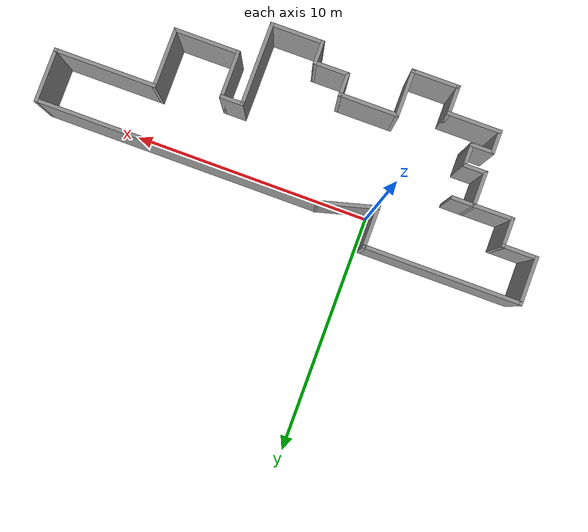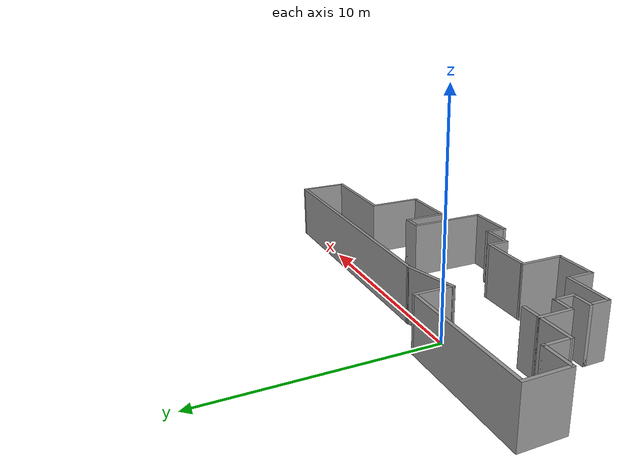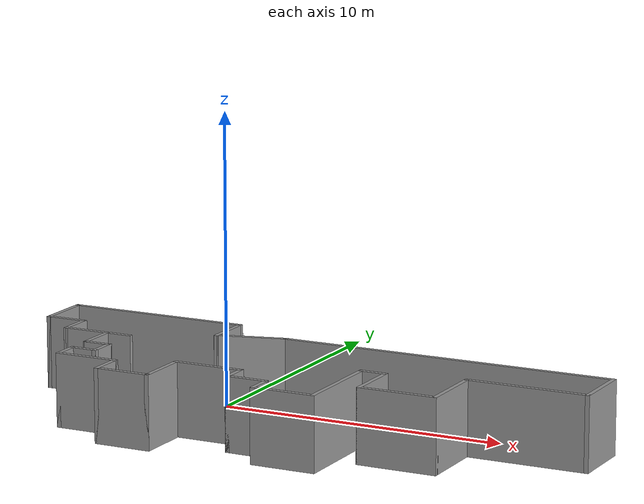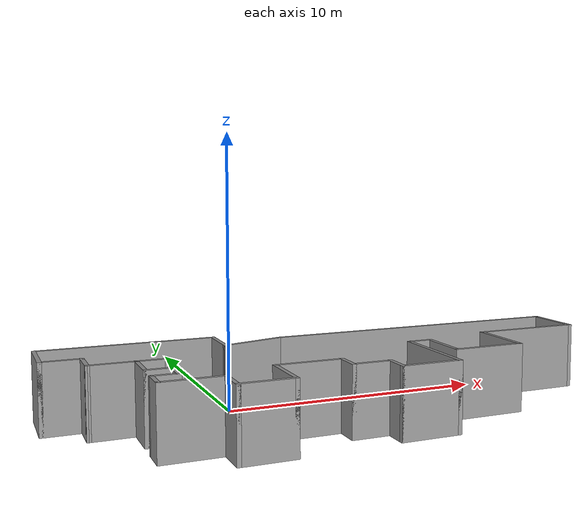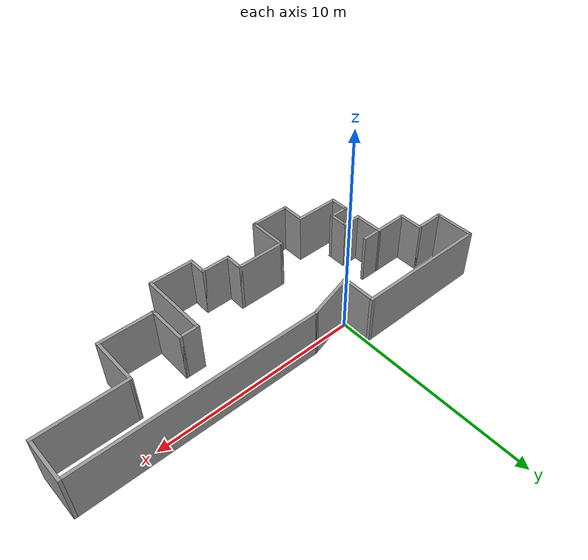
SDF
<?xml version='1.0'?>
<sdf version='1.7'>
  <model name='new_world'>
    <pose>3.56004 -2.22411 0 0 -0 0</pose>
    <link name='Wall_0'>
      <collision name='Wall_0_Collision'>
        <geometry>
          <box>
            <size>1.5 0.15 2.5</size>
          </box>
        </geometry>
        <pose>0 0 1.25 0 -0 0</pose>
      </collision>
      <visual name='Wall_0_Visual'>
        <pose>0 0 1.25 0 -0 0</pose>
        <geometry>
          <box>
            <size>1.5 0.15 2.5</size>
          </box>
        </geometry>
        <material>
          <script>
            <uri>file://media/materials/scripts/gazebo.material</uri>
            <name>Gazebo/Grey</name>
          </script>
          <ambient>1 1 1 1</ambient>
        </material>
        <meta>
          <layer>0</layer>
        </meta>
      </visual>
      <pose>-7.19004 -0.070888 0 0 -0 -1.5708</pose>
    </link>
    <link name='Wall_1'>
      <collision name='Wall_1_Collision'>
        <geometry>
          <box>
            <size>1 0.15 2.5</size>
          </box>
        </geometry>
        <pose>0 0 1.25 0 -0 0</pose>
      </collision>
      <visual name='Wall_1_Visual'>
        <pose>0 0 1.25 0 -0 0</pose>
        <geometry>
          <box>
            <size>1 0.15 2.5</size>
          </box>
        </geometry>
        <material>
          <script>
            <uri>file://media/materials/scripts/gazebo.material</uri>
            <name>Gazebo/Grey</name>
          </script>
          <ambient>1 1 1 1</ambient>
        </material>
        <meta>
          <layer>0</layer>
        </meta>
      </visual>
      <pose>-6.76504 -0.745888 0 0 -0 0</pose>
    </link>
    <link name='Wall_10'>
      <collision name='Wall_10_Collision'>
        <geometry>
          <box>
            <size>1 0.15 2.5</size>
          </box>
        </geometry>
        <pose>0 0 1.25 0 -0 0</pose>
      </collision>
      <visual name='Wall_10_Visual'>
        <pose>0 0 1.25 0 -0 0</pose>
        <geometry>
          <box>
            <size>1 0.15 2.5</size>
          </box>
        </geometry>
        <material>
          <script>
            <uri>file://media/materials/scripts/gazebo.material</uri>
            <name>Gazebo/Grey</name>
          </script>
          <ambient>1 1 1 1</ambient>
        </material>
        <meta>
          <layer>0</layer>
        </meta>
      </visual>
      <pose>-0.890037 -2.12089 0 0 -0 -1.5708</pose>
    </link>
    <link name='Wall_11'>
      <collision name='Wall_11_Collision'>
        <geometry>
          <box>
            <size>1.5 0.15 2.5</size>
          </box>
        </geometry>
        <pose>0 0 1.25 0 -0 0</pose>
      </collision>
      <visual name='Wall_11_Visual'>
        <pose>0 0 1.25 0 -0 0</pose>
        <geometry>
          <box>
            <size>1.5 0.15 2.5</size>
          </box>
        </geometry>
        <material>
          <script>
            <uri>file://media/materials/scripts/gazebo.material</uri>
            <name>Gazebo/Grey</name>
          </script>
          <ambient>1 1 1 1</ambient>
        </material>
        <meta>
          <layer>0</layer>
        </meta>
      </visual>
      <pose>-0.215037 -2.54589 0 0 -0 0</pose>
    </link>
    <link name='Wall_12'>
      <collision name='Wall_12_Collision'>
        <geometry>
          <box>
            <size>1 0.15 2.5</size>
          </box>
        </geometry>
        <pose>0 0 1.25 0 -0 0</pose>
      </collision>
      <visual name='Wall_12_Visual'>
        <pose>0 0 1.25 0 -0 0</pose>
        <geometry>
          <box>
            <size>1 0.15 2.5</size>
          </box>
        </geometry>
        <material>
          <script>
            <uri>file://media/materials/scripts/gazebo.material</uri>
            <name>Gazebo/Grey</name>
          </script>
          <ambient>1 1 1 1</ambient>
        </material>
        <meta>
          <layer>0</layer>
        </meta>
      </visual>
      <pose>0.459963 -2.97089 0 0 -0 -1.5708</pose>
    </link>
    <link name='Wall_13'>
      <collision name='Wall_13_Collision'>
        <geometry>
          <box>
            <size>2.25 0.15 2.5</size>
          </box>
        </geometry>
        <pose>0 0 1.25 0 -0 0</pose>
      </collision>
      <visual name='Wall_13_Visual'>
        <pose>0 0 1.25 0 -0 0</pose>
        <geometry>
          <box>
            <size>2.25 0.15 2.5</size>
          </box>
        </geometry>
        <material>
          <script>
            <uri>file://media/materials/scripts/gazebo.material</uri>
            <name>Gazebo/Grey</name>
          </script>
          <ambient>1 1 1 1</ambient>
        </material>
        <meta>
          <layer>0</layer>
        </meta>
      </visual>
      <pose>1.50996 -3.39589 0 0 -0 0</pose>
    </link>
    <link name='Wall_14'>
      <collision name='Wall_14_Collision'>
        <geometry>
          <box>
            <size>3.5 0.15 2.5</size>
          </box>
        </geometry>
        <pose>0 0 1.25 0 -0 0</pose>
      </collision>
      <visual name='Wall_14_Visual'>
        <pose>0 0 1.25 0 -0 0</pose>
        <geometry>
          <box>
            <size>3.5 0.15 2.5</size>
          </box>
        </geometry>
        <material>
          <script>
            <uri>file://media/materials/scripts/gazebo.material</uri>
            <name>Gazebo/Grey</name>
          </script>
          <ambient>1 1 1 1</ambient>
        </material>
        <meta>
          <layer>0</layer>
        </meta>
      </visual>
      <pose>2.55996 -1.72089 0 0 -0 1.5708</pose>
    </link>
    <link name='Wall_15'>
      <collision name='Wall_15_Collision'>
        <geometry>
          <box>
            <size>1 0.15 2.5</size>
          </box>
        </geometry>
        <pose>0 0 1.25 0 -0 0</pose>
      </collision>
      <visual name='Wall_15_Visual'>
        <pose>0 0 1.25 0 -0 0</pose>
        <geometry>
          <box>
            <size>1 0.15 2.5</size>
          </box>
        </geometry>
        <material>
          <script>
            <uri>file://media/materials/scripts/gazebo.material</uri>
            <name>Gazebo/Grey</name>
          </script>
          <ambient>1 1 1 1</ambient>
        </material>
        <meta>
          <layer>0</layer>
        </meta>
      </visual>
      <pose>2.98496 -0.045888 0 0 -0 0</pose>
    </link>
    <link name='Wall_16'>
      <collision name='Wall_16_Collision'>
        <geometry>
          <box>
            <size>2 0.15 2.5</size>
          </box>
        </geometry>
        <pose>0 0 1.25 0 -0 0</pose>
      </collision>
      <visual name='Wall_16_Visual'>
        <pose>0 0 1.25 0 -0 0</pose>
        <geometry>
          <box>
            <size>2 0.15 2.5</size>
          </box>
        </geometry>
        <material>
          <script>
            <uri>file://media/materials/scripts/gazebo.material</uri>
            <name>Gazebo/Grey</name>
          </script>
          <ambient>1 1 1 1</ambient>
        </material>
        <meta>
          <layer>0</layer>
        </meta>
      </visual>
      <pose>3.40996 -0.970888 0 0 -0 -1.5708</pose>
    </link>
    <link name='Wall_17'>
      <collision name='Wall_17_Collision'>
        <geometry>
          <box>
            <size>2.75 0.15 2.5</size>
          </box>
        </geometry>
        <pose>0 0 1.25 0 -0 0</pose>
      </collision>
      <visual name='Wall_17_Visual'>
        <pose>0 0 1.25 0 -0 0</pose>
        <geometry>
          <box>
            <size>2.75 0.15 2.5</size>
          </box>
        </geometry>
        <material>
          <script>
            <uri>file://media/materials/scripts/gazebo.material</uri>
            <name>Gazebo/Grey</name>
          </script>
          <ambient>1 1 1 1</ambient>
        </material>
        <meta>
          <layer>0</layer>
        </meta>
      </visual>
      <pose>4.70996 -1.89589 0 0 -0 0</pose>
    </link>
    <link name='Wall_18'>
      <collision name='Wall_18_Collision'>
        <geometry>
          <box>
            <size>2.5 0.15 2.5</size>
          </box>
        </geometry>
        <pose>0 0 1.25 0 -0 0</pose>
      </collision>
      <visual name='Wall_18_Visual'>
        <pose>0 0 1.25 0 -0 0</pose>
        <geometry>
          <box>
            <size>2.5 0.15 2.5</size>
          </box>
        </geometry>
        <material>
          <script>
            <uri>file://media/materials/scripts/gazebo.material</uri>
            <name>Gazebo/Grey</name>
          </script>
          <ambient>1 1 1 1</ambient>
        </material>
        <meta>
          <layer>0</layer>
        </meta>
      </visual>
      <pose>6.00996 -0.720888 0 0 -0 1.5708</pose>
    </link>
    <link name='Wall_19'>
      <collision name='Wall_19_Collision'>
        <geometry>
          <box>
            <size>4.25 0.15 2.5</size>
          </box>
        </geometry>
        <pose>0 0 1.25 0 -0 0</pose>
      </collision>
      <visual name='Wall_19_Visual'>
        <pose>0 0 1.25 0 -0 0</pose>
        <geometry>
          <box>
            <size>4.25 0.15 2.5</size>
          </box>
        </geometry>
        <material>
          <script>
            <uri>file://media/materials/scripts/gazebo.material</uri>
            <name>Gazebo/Grey</name>
          </script>
          <ambient>1 1 1 1</ambient>
        </material>
        <meta>
          <layer>0</layer>
        </meta>
      </visual>
      <pose>8.05996 0.454112 0 0 -0 0</pose>
    </link>
    <link name='Wall_2'>
      <collision name='Wall_2_Collision'>
        <geometry>
          <box>
            <size>1 0.15 2.5</size>
          </box>
        </geometry>
        <pose>0 0 1.25 0 -0 0</pose>
      </collision>
      <visual name='Wall_2_Visual'>
        <pose>0 0 1.25 0 -0 0</pose>
        <geometry>
          <box>
            <size>1 0.15 2.5</size>
          </box>
        </geometry>
        <material>
          <script>
            <uri>file://media/materials/scripts/gazebo.material</uri>
            <name>Gazebo/Grey</name>
          </script>
          <ambient>1 1 1 1</ambient>
        </material>
        <meta>
          <layer>0</layer>
        </meta>
      </visual>
      <pose>-6.34004 -1.17089 0 0 -0 -1.5708</pose>
    </link>
    <link name='Wall_20'>
      <collision name='Wall_20_Collision'>
        <geometry>
          <box>
            <size>2.25 0.15 2.5</size>
          </box>
        </geometry>
        <pose>0 0 1.25 0 -0 0</pose>
      </collision>
      <visual name='Wall_20_Visual'>
        <pose>0 0 1.25 0 -0 0</pose>
        <geometry>
          <box>
            <size>2.25 0.15 2.5</size>
          </box>
        </geometry>
        <material>
          <script>
            <uri>file://media/materials/scripts/gazebo.material</uri>
            <name>Gazebo/Grey</name>
          </script>
          <ambient>1 1 1 1</ambient>
        </material>
        <meta>
          <layer>0</layer>
        </meta>
      </visual>
      <pose>10.11 1.50411 0 0 -0 1.5708</pose>
    </link>
    <link name='Wall_21'>
      <collision name='Wall_21_Collision'>
        <geometry>
          <box>
            <size>11.75 0.15 2.5</size>
          </box>
        </geometry>
        <pose>0 0 1.25 0 -0 0</pose>
      </collision>
      <visual name='Wall_21_Visual'>
        <pose>0 0 1.25 0 -0 0</pose>
        <geometry>
          <box>
            <size>11.75 0.15 2.5</size>
          </box>
        </geometry>
        <material>
          <script>
            <uri>file://media/materials/scripts/gazebo.material</uri>
            <name>Gazebo/Grey</name>
          </script>
          <ambient>1 1 1 1</ambient>
        </material>
        <meta>
          <layer>0</layer>
        </meta>
      </visual>
      <pose>4.30996 2.55411 0 0 -0 3.14159</pose>
    </link>
    <link name='Wall_22'>
      <collision name='Wall_22_Collision'>
        <geometry>
          <box>
            <size>2.5 0.15 2.5</size>
          </box>
        </geometry>
        <pose>0 0 1.25 0 -0 0</pose>
      </collision>
      <visual name='Wall_22_Visual'>
        <pose>0 0 1.25 0 -0 0</pose>
        <geometry>
          <box>
            <size>2.5 0.15 2.5</size>
          </box>
        </geometry>
        <material>
          <script>
            <uri>file://media/materials/scripts/gazebo.material</uri>
            <name>Gazebo/Grey</name>
          </script>
          <ambient>1 1 1 1</ambient>
        </material>
        <meta>
          <layer>0</layer>
        </meta>
      </visual>
      <pose>-2.625 2.25 0 0 -0 -2.87979</pose>
    </link>
    <link name='Wall_23'>
      <collision name='Wall_23_Collision'>
        <geometry>
          <box>
            <size>1.75 0.15 2.5</size>
          </box>
        </geometry>
        <pose>0 0 1.25 0 -0 0</pose>
      </collision>
      <visual name='Wall_23_Visual'>
        <pose>0 0 1.25 0 -0 0</pose>
        <geometry>
          <box>
            <size>1.75 0.15 2.5</size>
          </box>
        </geometry>
        <material>
          <script>
            <uri>file://media/materials/scripts/gazebo.material</uri>
            <name>Gazebo/Grey</name>
          </script>
          <ambient>1 1 1 1</ambient>
        </material>
        <meta>
          <layer>0</layer>
        </meta>
      </visual>
      <pose>-3.75996 2.74589 0 0 -0 1.5708</pose>
    </link>
    <link name='Wall_24'>
      <collision name='Wall_24_Collision'>
        <geometry>
          <box>
            <size>6.5 0.15 2.5</size>
          </box>
        </geometry>
        <pose>0 0 1.25 0 -0 0</pose>
      </collision>
      <visual name='Wall_24_Visual'>
        <pose>0 0 1.25 0 -0 0</pose>
        <geometry>
          <box>
            <size>6.5 0.15 2.5</size>
          </box>
        </geometry>
        <material>
          <script>
            <uri>file://media/materials/scripts/gazebo.material</uri>
            <name>Gazebo/Grey</name>
          </script>
          <ambient>1 1 1 1</ambient>
        </material>
        <meta>
          <layer>0</layer>
        </meta>
      </visual>
      <pose>-6.93496 3.54589 0 0 -0 3.14159</pose>
    </link>
    <link name='Wall_25'>
      <collision name='Wall_25_Collision'>
        <geometry>
          <box>
            <size>2 0.15 2.5</size>
          </box>
        </geometry>
        <pose>0 0 1.25 0 -0 0</pose>
      </collision>
      <visual name='Wall_25_Visual'>
        <pose>0 0 1.25 0 -0 0</pose>
        <geometry>
          <box>
            <size>2 0.15 2.5</size>
          </box>
        </geometry>
        <material>
          <script>
            <uri>file://media/materials/scripts/gazebo.material</uri>
            <name>Gazebo/Grey</name>
          </script>
          <ambient>1 1 1 1</ambient>
        </material>
        <meta>
          <layer>0</layer>
        </meta>
      </visual>
      <pose>-10.11 2.62089 0 0 -0 -1.5708</pose>
    </link>
    <link name='Wall_26'>
      <collision name='Wall_26_Collision'>
        <geometry>
          <box>
            <size>1.5 0.15 2.5</size>
          </box>
        </geometry>
        <pose>0 0 1.25 0 -0 0</pose>
      </collision>
      <visual name='Wall_26_Visual'>
        <pose>0 0 1.25 0 -0 0</pose>
        <geometry>
          <box>
            <size>1.5 0.15 2.5</size>
          </box>
        </geometry>
        <material>
          <script>
            <uri>file://media/materials/scripts/gazebo.material</uri>
            <name>Gazebo/Grey</name>
          </script>
          <ambient>1 1 1 1</ambient>
        </material>
        <meta>
          <layer>0</layer>
        </meta>
      </visual>
      <pose>-9.43496 1.69589 0 0 -0 0</pose>
    </link>
    <link name='Wall_27'>
      <collision name='Wall_27_Collision'>
        <geometry>
          <box>
            <size>1.25 0.15 2.5</size>
          </box>
        </geometry>
        <pose>0 0 1.25 0 -0 0</pose>
      </collision>
      <visual name='Wall_27_Visual'>
        <pose>0 0 1.25 0 -0 0</pose>
        <geometry>
          <box>
            <size>1.25 0.15 2.5</size>
          </box>
        </geometry>
        <material>
          <script>
            <uri>file://media/materials/scripts/gazebo.material</uri>
            <name>Gazebo/Grey</name>
          </script>
          <ambient>1 1 1 1</ambient>
        </material>
        <meta>
          <layer>0</layer>
        </meta>
      </visual>
      <pose>-8.75996 1.14589 0 0 -0 -1.5708</pose>
    </link>
    <link name='Wall_28'>
      <collision name='Wall_28_Collision'>
        <geometry>
          <box>
            <size>1.71995 0.15 2.5</size>
          </box>
        </geometry>
        <pose>0 0 1.25 0 -0 0</pose>
      </collision>
      <visual name='Wall_28_Visual'>
        <pose>0 0 1.25 0 -0 0</pose>
        <geometry>
          <box>
            <size>1.71995 0.15 2.5</size>
          </box>
        </geometry>
        <material>
          <script>
            <uri>file://media/materials/scripts/gazebo.material</uri>
            <name>Gazebo/Grey</name>
          </script>
          <ambient>1 1 1 1</ambient>
        </material>
        <meta>
          <layer>0</layer>
        </meta>
      </visual>
      <pose>-7.975 0.6 0 0 -0 0.005239</pose>
    </link>
    <link name='Wall_29'>
      <collision name='Wall_29_Collision'>
        <geometry>
          <box>
            <size>1 0.15 2.5</size>
          </box>
        </geometry>
        <pose>0 0 1.25 0 -0 0</pose>
      </collision>
      <visual name='Wall_29_Visual'>
        <pose>0 0 1.25 0 -0 0</pose>
        <geometry>
          <box>
            <size>1 0.15 2.5</size>
          </box>
        </geometry>
        <material>
          <script>
            <uri>file://media/materials/scripts/gazebo.material</uri>
            <name>Gazebo/Grey</name>
          </script>
          <ambient>1 1 1 1</ambient>
        </material>
        <meta>
          <layer>0</layer>
        </meta>
      </visual>
      <pose>-6.76504 0.604112 0 0 -0 0</pose>
    </link>
    <link name='Wall_3'>
      <collision name='Wall_3_Collision'>
        <geometry>
          <box>
            <size>1 0.15 2.5</size>
          </box>
        </geometry>
        <pose>0 0 1.25 0 -0 0</pose>
      </collision>
      <visual name='Wall_3_Visual'>
        <pose>0 0 1.25 0 -0 0</pose>
        <geometry>
          <box>
            <size>1 0.15 2.5</size>
          </box>
        </geometry>
        <material>
          <script>
            <uri>file://media/materials/scripts/gazebo.material</uri>
            <name>Gazebo/Grey</name>
          </script>
          <ambient>1 1 1 1</ambient>
        </material>
        <meta>
          <layer>0</layer>
        </meta>
      </visual>
      <pose>-6.76504 -1.59589 0 0 -0 3.14159</pose>
    </link>
    <link name='Wall_4'>
      <collision name='Wall_4_Collision'>
        <geometry>
          <box>
            <size>1 0.15 2.5</size>
          </box>
        </geometry>
        <pose>0 0 1.25 0 -0 0</pose>
      </collision>
      <visual name='Wall_4_Visual'>
        <pose>0 0 1.25 0 -0 0</pose>
        <geometry>
          <box>
            <size>1 0.15 2.5</size>
          </box>
        </geometry>
        <material>
          <script>
            <uri>file://media/materials/scripts/gazebo.material</uri>
            <name>Gazebo/Grey</name>
          </script>
          <ambient>1 1 1 1</ambient>
        </material>
        <meta>
          <layer>0</layer>
        </meta>
      </visual>
      <pose>-7.19004 -2.02089 0 0 -0 -1.5708</pose>
    </link>
    <link name='Wall_5'>
      <collision name='Wall_5_Collision'>
        <geometry>
          <box>
            <size>2.25 0.15 2.5</size>
          </box>
        </geometry>
        <pose>0 0 1.25 0 -0 0</pose>
      </collision>
      <visual name='Wall_5_Visual'>
        <pose>0 0 1.25 0 -0 0</pose>
        <geometry>
          <box>
            <size>2.25 0.15 2.5</size>
          </box>
        </geometry>
        <material>
          <script>
            <uri>file://media/materials/scripts/gazebo.material</uri>
            <name>Gazebo/Grey</name>
          </script>
          <ambient>1 1 1 1</ambient>
        </material>
        <meta>
          <layer>0</layer>
        </meta>
      </visual>
      <pose>-6.14004 -2.44589 0 0 -0 0</pose>
    </link>
    <link name='Wall_6'>
      <collision name='Wall_6_Collision'>
        <geometry>
          <box>
            <size>1.25 0.15 2.5</size>
          </box>
        </geometry>
        <pose>0 0 1.25 0 -0 0</pose>
      </collision>
      <visual name='Wall_6_Visual'>
        <pose>0 0 1.25 0 -0 0</pose>
        <geometry>
          <box>
            <size>1.25 0.15 2.5</size>
          </box>
        </geometry>
        <material>
          <script>
            <uri>file://media/materials/scripts/gazebo.material</uri>
            <name>Gazebo/Grey</name>
          </script>
          <ambient>1 1 1 1</ambient>
        </material>
        <meta>
          <layer>0</layer>
        </meta>
      </visual>
      <pose>-5.09004 -2.99589 0 0 -0 -1.5708</pose>
    </link>
    <link name='Wall_7'>
      <collision name='Wall_7_Collision'>
        <geometry>
          <box>
            <size>2 0.15 2.5</size>
          </box>
        </geometry>
        <pose>0 0 1.25 0 -0 0</pose>
      </collision>
      <visual name='Wall_7_Visual'>
        <pose>0 0 1.25 0 -0 0</pose>
        <geometry>
          <box>
            <size>2 0.15 2.5</size>
          </box>
        </geometry>
        <material>
          <script>
            <uri>file://media/materials/scripts/gazebo.material</uri>
            <name>Gazebo/Grey</name>
          </script>
          <ambient>1 1 1 1</ambient>
        </material>
        <meta>
          <layer>0</layer>
        </meta>
      </visual>
      <pose>-4.16504 -3.54589 0 0 -0 0</pose>
    </link>
    <link name='Wall_8'>
      <collision name='Wall_8_Collision'>
        <geometry>
          <box>
            <size>2 0.15 2.5</size>
          </box>
        </geometry>
        <pose>0 0 1.25 0 -0 0</pose>
      </collision>
      <visual name='Wall_8_Visual'>
        <pose>0 0 1.25 0 -0 0</pose>
        <geometry>
          <box>
            <size>2 0.15 2.5</size>
          </box>
        </geometry>
        <material>
          <script>
            <uri>file://media/materials/scripts/gazebo.material</uri>
            <name>Gazebo/Grey</name>
          </script>
          <ambient>1 1 1 1</ambient>
        </material>
        <meta>
          <layer>0</layer>
        </meta>
      </visual>
      <pose>-3.24004 -2.62089 0 0 -0 1.5708</pose>
    </link>
    <link name='Wall_9'>
      <collision name='Wall_9_Collision'>
        <geometry>
          <box>
            <size>2.5 0.15 2.5</size>
          </box>
        </geometry>
        <pose>0 0 1.25 0 -0 0</pose>
      </collision>
      <visual name='Wall_9_Visual'>
        <pose>0 0 1.25 0 -0 0</pose>
        <geometry>
          <box>
            <size>2.5 0.15 2.5</size>
          </box>
        </geometry>
        <material>
          <script>
            <uri>file://media/materials/scripts/gazebo.material</uri>
            <name>Gazebo/Grey</name>
          </script>
          <ambient>1 1 1 1</ambient>
        </material>
        <meta>
          <layer>0</layer>
        </meta>
      </visual>
      <pose>-2.06504 -1.69589 0 0 -0 0</pose>
    </link>
    <static>1</static>
  </model>
</sdf>
